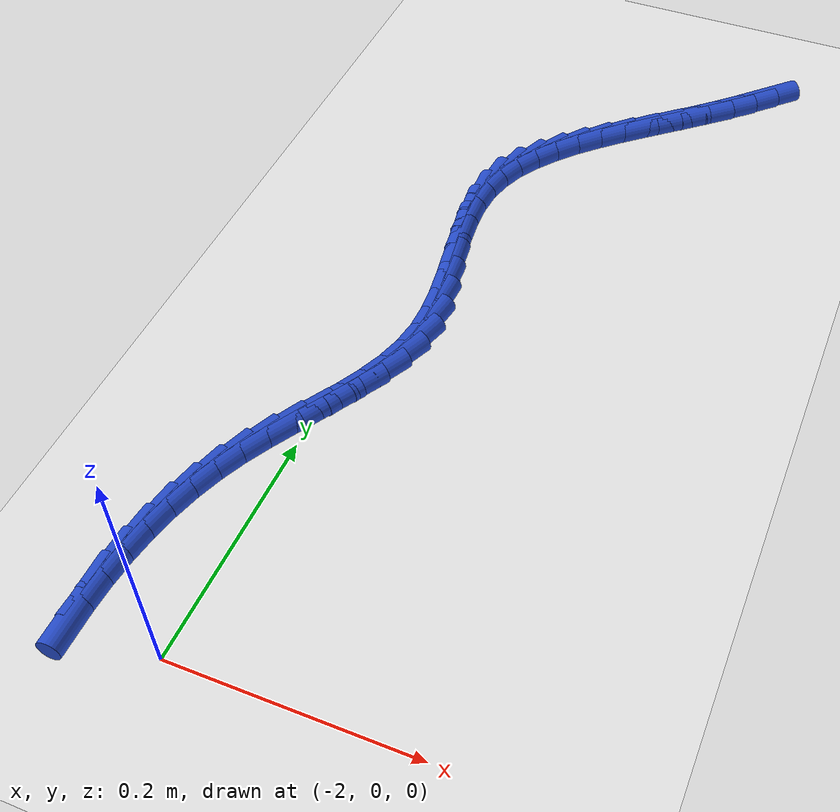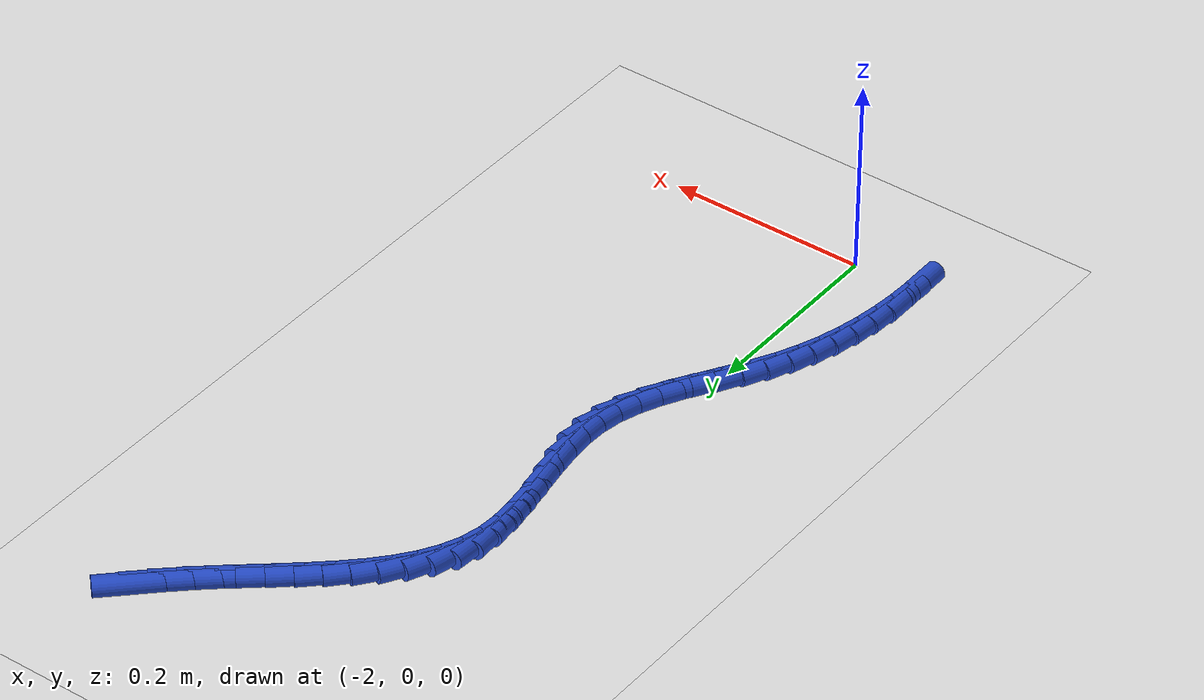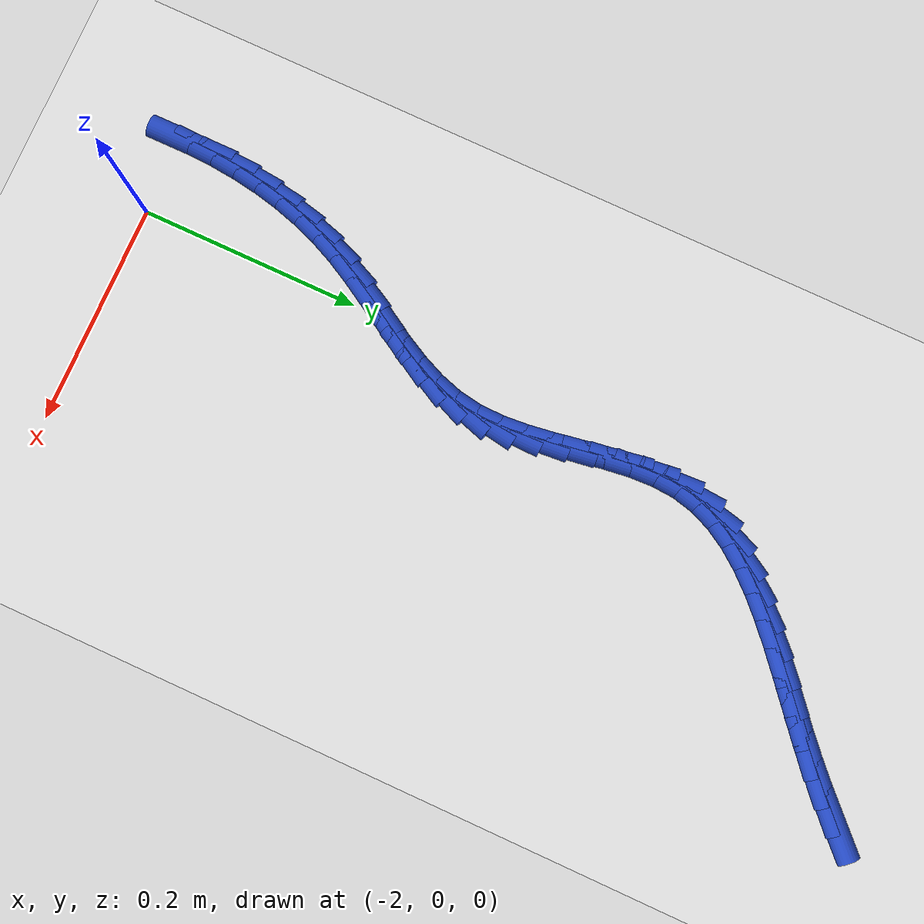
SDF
<sdf version="1.6">
 <world name="default">
  <model name="ground_plane">
   <static>1</static>
   <link name="link">
    <collision name="collision">
     <geometry><plane><normal>0 0 1</normal><size>100 100</size></plane></geometry>
     <surface><friction><ode><mu>100</mu><mu2>50</mu2></ode></friction></surface>
    </collision>
    <visual name="visual">
     <cast_shadows>0</cast_shadows>
     <geometry><plane><normal>0 0 1</normal><size>100 100</size></plane></geometry>
     <material>
      <script><uri>file://media/materials/scripts/gazebo.material</uri><name>Gazebo/WhiteGlow</name></script>
     </material>
    </visual>
   </link>
  </model>
  <model name="line">
   <link name="link_109">
    <pose>-1.771466565268514 0.7473538264761552 0.01 0 1.57 0.7790413126371049</pose>
    <collision name="collision">
     <geometry><cylinder><radius>0.01</radius><length>0.08</length></cylinder></geometry>
    </collision>
    <visual name="visual">
     <material>
      <script><name>Gazebo/Blue</name><uri>file://media/materials/scripts/gazebo.material</uri></script>
     </material>
     <geometry><cylinder><radius>0.01</radius><length>0.08</length></cylinder></geometry>
    </visual>
   </link>
   <link name="link_110">
    <pose>-1.788600950193411 0.7304359098659666 0.01 0 1.57 0.7538015448354323</pose>
    <collision name="collision">
     <geometry><cylinder><radius>0.01</radius><length>0.08</length></cylinder></geometry>
    </collision>
    <visual name="visual">
     <material>
      <script><name>Gazebo/Blue</name><uri>file://media/materials/scripts/gazebo.material</uri></script>
     </material>
     <geometry><cylinder><radius>0.01</radius><length>0.08</length></cylinder></geometry>
    </visual>
   </link>
   <link name="link_111">
    <pose>-1.8064144931316226 0.7137139357652277 0.01 0 1.57 0.7248236412766847</pose>
    <collision name="collision">
     <geometry><cylinder><radius>0.01</radius><length>0.08</length></cylinder></geometry>
    </collision>
    <visual name="visual">
     <material>
      <script><name>Gazebo/Blue</name><uri>file://media/materials/scripts/gazebo.material</uri></script>
     </material>
     <geometry><cylinder><radius>0.01</radius><length>0.08</length></cylinder></geometry>
    </visual>
   </link>
   <link name="link_112">
    <pose>-1.8249987922706286 0.6972549660007393 0.01 0 1.57 0.7043877822348676</pose>
    <collision name="collision">
     <geometry><cylinder><radius>0.01</radius><length>0.08</length></cylinder></geometry>
    </collision>
    <visual name="visual">
     <material>
      <script><name>Gazebo/Blue</name><uri>file://media/materials/scripts/gazebo.material</uri></script>
     </material>
     <geometry><cylinder><radius>0.01</radius><length>0.08</length></cylinder></geometry>
    </visual>
   </link>
   <link name="link_113">
    <pose>-1.8441264968978757 0.6809999184746548 0.01 0 1.57 0.6992294425343909</pose>
    <collision name="collision">
     <geometry><cylinder><radius>0.01</radius><length>0.08</length></cylinder></geometry>
    </collision>
    <visual name="visual">
     <material>
      <script><name>Gazebo/Blue</name><uri>file://media/materials/scripts/gazebo.material</uri></script>
     </material>
     <geometry><cylinder><radius>0.01</radius><length>0.08</length></cylinder></geometry>
    </visual>
   </link>
   <link name="link_114">
    <pose>-1.8633749828345685 0.6648124806568895 0.01 0 1.57 0.709225004221987</pose>
    <collision name="collision">
     <geometry><cylinder><radius>0.01</radius><length>0.08</length></cylinder></geometry>
    </collision>
    <visual name="visual">
     <material>
      <script><name>Gazebo/Blue</name><uri>file://media/materials/scripts/gazebo.material</uri></script>
     </material>
     <geometry><cylinder><radius>0.01</radius><length>0.08</length></cylinder></geometry>
    </visual>
   </link>
   <link name="link_115">
    <pose>-1.882318812153481 0.648555227183078 0.01 0 1.57 0.7349988497843716</pose>
    <collision name="collision">
     <geometry><cylinder><radius>0.01</radius><length>0.08</length></cylinder></geometry>
    </collision>
    <visual name="visual">
     <material>
      <script><name>Gazebo/Blue</name><uri>file://media/materials/scripts/gazebo.material</uri></script>
     </material>
     <geometry><cylinder><radius>0.01</radius><length>0.08</length></cylinder></geometry>
    </visual>
   </link>
   <link name="link_116">
    <pose>-1.9005325469273884 0.6320907326888545 0.01 0 1.57 0.7780448618520328</pose>
    <collision name="collision">
     <geometry><cylinder><radius>0.01</radius><length>0.08</length></cylinder></geometry>
    </collision>
    <visual name="visual">
     <material>
      <script><name>Gazebo/Blue</name><uri>file://media/materials/scripts/gazebo.material</uri></script>
     </material>
     <geometry><cylinder><radius>0.01</radius><length>0.08</length></cylinder></geometry>
    </visual>
   </link>
   <link name="link_117">
    <pose>-1.9175907492290645 0.6152815718098534 0.01 0 1.57 0.8407004173095257</pose>
    <collision name="collision">
     <geometry><cylinder><radius>0.01</radius><length>0.08</length></cylinder></geometry>
    </collision>
    <visual name="visual">
     <material>
      <script><name>Gazebo/Blue</name><uri>file://media/materials/scripts/gazebo.material</uri></script>
     </material>
     <geometry><cylinder><radius>0.01</radius><length>0.08</length></cylinder></geometry>
    </visual>
   </link>
   <link name="link_118">
    <pose>-1.9330679811312839 0.5979903191817085 0.01 0 1.57 0.9259478060596975</pose>
    <collision name="collision">
     <geometry><cylinder><radius>0.01</radius><length>0.08</length></cylinder></geometry>
    </collision>
    <visual name="visual">
     <material>
      <script><name>Gazebo/Blue</name><uri>file://media/materials/scripts/gazebo.material</uri></script>
     </material>
     <geometry><cylinder><radius>0.01</radius><length>0.08</length></cylinder></geometry>
    </visual>
   </link>
   <link name="link_119">
    <pose>-1.946538804706821 0.5800795494400545 0.01 0 1.57 1.036768316722575</pose>
    <collision name="collision">
     <geometry><cylinder><radius>0.01</radius><length>0.08</length></cylinder></geometry>
    </collision>
    <visual name="visual">
     <material>
      <script><name>Gazebo/Blue</name><uri>file://media/materials/scripts/gazebo.material</uri></script>
     </material>
     <geometry><cylinder><radius>0.01</radius><length>0.08</length></cylinder></geometry>
    </visual>
   </link>
   <link name="link_120">
    <pose>-1.9575777820284512 0.5614118372205255 0.01 0 1.57 1.1746632424410919</pose>
    <collision name="collision">
     <geometry><cylinder><radius>0.01</radius><length>0.08</length></cylinder></geometry>
    </collision>
    <visual name="visual">
     <material>
      <script><name>Gazebo/Blue</name><uri>file://media/materials/scripts/gazebo.material</uri></script>
     </material>
     <geometry><cylinder><radius>0.01</radius><length>0.08</length></cylinder></geometry>
    </visual>
   </link>
   <link name="link_121">
    <pose>-1.9657594751689478 0.5418497571587559 0.01 0 1.57 1.3371906927652175</pose>
    <collision name="collision">
     <geometry><cylinder><radius>0.01</radius><length>0.08</length></cylinder></geometry>
    </collision>
    <visual name="visual">
     <material>
      <script><name>Gazebo/Blue</name><uri>file://media/materials/scripts/gazebo.material</uri></script>
     </material>
     <geometry><cylinder><radius>0.01</radius><length>0.08</length></cylinder></geometry>
    </visual>
   </link>
   <link name="link_122">
    <pose>-1.9706596972994663 0.5212562534007614 0.01 0 1.57 1.5000370958665104</pose>
    <collision name="collision">
     <geometry><cylinder><radius>0.01</radius><length>0.08</length></cylinder></geometry>
    </collision>
    <visual name="visual">
     <material>
      <script><name>Gazebo/Blue</name><uri>file://media/materials/scripts/gazebo.material</uri></script>
     </material>
     <geometry><cylinder><radius>0.01</radius><length>0.08</length></cylinder></geometry>
    </visual>
   </link>
   <link name="link_123">
    <pose>-1.9721950007230418 0.49959490697972886 0.01 0 1.57 -1.5214820642111615</pose>
    <collision name="collision">
     <geometry><cylinder><radius>0.01</radius><length>0.08</length></cylinder></geometry>
    </collision>
    <visual name="visual">
     <material>
      <script><name>Gazebo/Blue</name><uri>file://media/materials/scripts/gazebo.material</uri></script>
     </material>
     <geometry><cylinder><radius>0.01</radius><length>0.08</length></cylinder></geometry>
    </visual>
   </link>
   <link name="link_124">
    <pose>-1.9710830988981793 0.47706592089933747 0.01 0 1.57 -1.445121849532125</pose>
    <collision name="collision">
     <geometry><cylinder><radius>0.01</radius><length>0.08</length></cylinder></geometry>
    </collision>
    <visual name="visual">
     <material>
      <script><name>Gazebo/Blue</name><uri>file://media/materials/scripts/gazebo.material</uri></script>
     </material>
     <geometry><cylinder><radius>0.01</radius><length>0.08</length></cylinder></geometry>
    </visual>
   </link>
   <link name="link_125">
    <pose>-1.9681567481552007 0.4539034759351955 0.01 0 1.57 -1.4064286538435493</pose>
    <collision name="collision">
     <geometry><cylinder><radius>0.01</radius><length>0.08</length></cylinder></geometry>
    </collision>
    <visual name="visual">
     <material>
      <script><name>Gazebo/Blue</name><uri>file://media/materials/scripts/gazebo.material</uri></script>
     </material>
     <geometry><cylinder><radius>0.01</radius><length>0.08</length></cylinder></geometry>
    </visual>
   </link>
   <link name="link_126">
    <pose>-1.964248704824428 0.43034175286291315 0.01 0 1.57 -1.4014469778879837</pose>
    <collision name="collision">
     <geometry><cylinder><radius>0.01</radius><length>0.08</length></cylinder></geometry>
    </collision>
    <visual name="visual">
     <material>
      <script><name>Gazebo/Blue</name><uri>file://media/materials/scripts/gazebo.material</uri></script>
     </material>
     <geometry><cylinder><radius>0.01</radius><length>0.08</length></cylinder></geometry>
    </visual>
   </link>
   <link name="link_127">
    <pose>-1.9601917252361822 0.4066149324580994 0.01 0 1.57 -1.4291692513413985</pose>
    <collision name="collision">
     <geometry><cylinder><radius>0.01</radius><length>0.08</length></cylinder></geometry>
    </collision>
    <visual name="visual">
     <material>
      <script><name>Gazebo/Blue</name><uri>file://media/materials/scripts/gazebo.material</uri></script>
     </material>
     <geometry><cylinder><radius>0.01</radius><length>0.08</length></cylinder></geometry>
    </visual>
   </link>
   <link name="link_128">
    <pose>-1.9568185657207873 0.382957195496364 0.01 0 1.57 -1.491467328468943</pose>
    <collision name="collision">
     <geometry><cylinder><radius>0.01</radius><length>0.08</length></cylinder></geometry>
    </collision>
    <visual name="visual">
     <material>
      <script><name>Gazebo/Blue</name><uri>file://media/materials/scripts/gazebo.material</uri></script>
     </material>
     <geometry><cylinder><radius>0.01</radius><length>0.08</length></cylinder></geometry>
    </visual>
   </link>
   <link name="link_129">
    <pose>-1.9549619826085638 0.35960272275331623 0.01 0 1.57 1.5492039859242983</pose>
    <collision name="collision">
     <geometry><cylinder><radius>0.01</radius><length>0.08</length></cylinder></geometry>
    </collision>
    <visual name="visual">
     <material>
      <script><name>Gazebo/Blue</name><uri>file://media/materials/scripts/gazebo.material</uri></script>
     </material>
     <geometry><cylinder><radius>0.01</radius><length>0.08</length></cylinder></geometry>
    </visual>
   </link>
   <link name="link_130">
    <pose>-1.9554547322298337 0.33678569500456557 0.01 0 1.57 1.4084623753906156</pose>
    <collision name="collision">
     <geometry><cylinder><radius>0.01</radius><length>0.08</length></cylinder></geometry>
    </collision>
    <visual name="visual">
     <material>
      <script><name>Gazebo/Blue</name><uri>file://media/materials/scripts/gazebo.material</uri></script>
     </material>
     <geometry><cylinder><radius>0.01</radius><length>0.08</length></cylinder></geometry>
    </visual>
   </link>
   <link name="link_131">
    <pose>-1.9590680543310888 0.3147229880232724 0.01 0 1.57 1.2673195715738828</pose>
    <collision name="collision">
     <geometry><cylinder><radius>0.01</radius><length>0.08</length></cylinder></geometry>
    </collision>
    <visual name="visual">
     <material>
      <script><name>Gazebo/Blue</name><uri>file://media/materials/scripts/gazebo.material</uri></script>
     </material>
     <geometry><cylinder><radius>0.01</radius><length>0.08</length></cylinder></geometry>
    </visual>
   </link>
   <link name="link_132">
    <pose>-1.9657457469651358 0.29339871302312864 0.01 0 1.57 1.1580958786090998</pose>
    <collision name="collision">
     <geometry><cylinder><radius>0.01</radius><length>0.08</length></cylinder></geometry>
    </collision>
    <visual name="visual">
     <material>
      <script><name>Gazebo/Blue</name><uri>file://media/materials/scripts/gazebo.material</uri></script>
     </material>
     <geometry><cylinder><radius>0.01</radius><length>0.08</length></cylinder></geometry>
    </visual>
   </link>
   <link name="link_133">
    <pose>-1.9748391019811637 0.27263030549128153 0.01 0 1.57 1.0820570206552478</pose>
    <collision name="collision">
     <geometry><cylinder><radius>0.01</radius><length>0.08</length></cylinder></geometry>
    </collision>
    <visual name="visual">
     <material>
      <script><name>Gazebo/Blue</name><uri>file://media/materials/scripts/gazebo.material</uri></script>
     </material>
     <geometry><cylinder><radius>0.01</radius><length>0.08</length></cylinder></geometry>
    </visual>
   </link>
   <link name="link_134">
    <pose>-1.9856865308493465 0.2522315775831436 0.01 0 1.57 1.0372880795987787</pose>
    <collision name="collision">
     <geometry><cylinder><radius>0.01</radius><length>0.08</length></cylinder></geometry>
    </collision>
    <visual name="visual">
     <material>
      <script><name>Gazebo/Blue</name><uri>file://media/materials/scripts/gazebo.material</uri></script>
     </material>
     <geometry><cylinder><radius>0.01</radius><length>0.08</length></cylinder></geometry>
    </visual>
   </link>
   <link name="link_135">
    <pose>-1.9976264450398604 0.23201634145412786 0.01 0 1.57 1.021692239177428</pose>
    <collision name="collision">
     <geometry><cylinder><radius>0.01</radius><length>0.08</length></cylinder></geometry>
    </collision>
    <visual name="visual">
     <material>
      <script><name>Gazebo/Blue</name><uri>file://media/materials/scripts/gazebo.material</uri></script>
     </material>
     <geometry><cylinder><radius>0.01</radius><length>0.08</length></cylinder></geometry>
    </visual>
   </link>
   <link name="link_136">
    <pose>-2.009997256022879 0.2117984092596475 0.01 0 1.57 1.0341314886987998</pose>
    <collision name="collision">
     <geometry><cylinder><radius>0.01</radius><length>0.08</length></cylinder></geometry>
    </collision>
    <visual name="visual">
     <material>
      <script><name>Gazebo/Blue</name><uri>file://media/materials/scripts/gazebo.material</uri></script>
     </material>
     <geometry><cylinder><radius>0.01</radius><length>0.08</length></cylinder></geometry>
    </visual>
   </link>
   <link name="link_137">
    <pose>-2.022137375268579 0.19139159315511559 0.01 0 1.57 1.0747090942664412</pose>
    <collision name="collision">
     <geometry><cylinder><radius>0.01</radius><length>0.08</length></cylinder></geometry>
    </collision>
    <visual name="visual">
     <material>
      <script><name>Gazebo/Blue</name><uri>file://media/materials/scripts/gazebo.material</uri></script>
     </material>
     <geometry><cylinder><radius>0.01</radius><length>0.08</length></cylinder></geometry>
    </visual>
   </link>
   <link name="link_138">
    <pose>-2.0333852142471343 0.170609705295945 0.01 0 1.57 1.1417381217211717</pose>
    <collision name="collision">
     <geometry><cylinder><radius>0.01</radius><length>0.08</length></cylinder></geometry>
    </collision>
    <visual name="visual">
     <material>
      <script><name>Gazebo/Blue</name><uri>file://media/materials/scripts/gazebo.material</uri></script>
     </material>
     <geometry><cylinder><radius>0.01</radius><length>0.08</length></cylinder></geometry>
    </visual>
   </link>
   <link name="link_139">
    <pose>-2.0431397012364876 0.1492875660913785 0.01 0 1.57 1.2151551380727048</pose>
    <collision name="collision">
     <geometry><cylinder><radius>0.01</radius><length>0.08</length></cylinder></geometry>
    </collision>
    <visual name="visual">
     <material>
      <script><name>Gazebo/Blue</name><uri>file://media/materials/scripts/gazebo.material</uri></script>
     </material>
     <geometry><cylinder><radius>0.01</radius><length>0.08</length></cylinder></geometry>
    </visual>
   </link>
   <link name="link_140">
    <pose>-2.0512619125548297 0.12742042945161142 0.01 0 1.57 1.2850464116411364</pose>
    <collision name="collision">
     <geometry><cylinder><radius>0.01</radius><length>0.08</length></cylinder></geometry>
    </collision>
    <visual name="visual">
     <material>
      <script><name>Gazebo/Blue</name><uri>file://media/materials/scripts/gazebo.material</uri></script>
     </material>
     <geometry><cylinder><radius>0.01</radius><length>0.08</length></cylinder></geometry>
    </visual>
   </link>
   <link name="link_141">
    <pose>-2.057826034497036 0.10507752986593565 0.01 0 1.57 1.3510377499080213</pose>
    <collision name="collision">
     <geometry><cylinder><radius>0.01</radius><length>0.08</length></cylinder></geometry>
    </collision>
    <visual name="visual">
     <material>
      <script><name>Gazebo/Blue</name><uri>file://media/materials/scripts/gazebo.material</uri></script>
     </material>
     <geometry><cylinder><radius>0.01</radius><length>0.08</length></cylinder></geometry>
    </visual>
   </link>
   <link name="link_142">
    <pose>-2.0629073934616318 0.08232849760768965 0.01 0 1.57 1.4129758913174826</pose>
    <collision name="collision">
     <geometry><cylinder><radius>0.01</radius><length>0.08</length></cylinder></geometry>
    </collision>
    <visual name="visual">
     <material>
      <script><name>Gazebo/Blue</name><uri>file://media/materials/scripts/gazebo.material</uri></script>
     </material>
     <geometry><cylinder><radius>0.01</radius><length>0.08</length></cylinder></geometry>
    </visual>
   </link>
   <link name="link_143">
    <pose>-2.066581315847148 0.059242962950211836 0.01 0 1.57 1.4708490614557397</pose>
    <collision name="collision">
     <geometry><cylinder><radius>0.01</radius><length>0.08</length></cylinder></geometry>
    </collision>
    <visual name="visual">
     <material>
      <script><name>Gazebo/Blue</name><uri>file://media/materials/scripts/gazebo.material</uri></script>
     </material>
     <geometry><cylinder><radius>0.01</radius><length>0.08</length></cylinder></geometry>
    </visual>
   </link>
   <link name="link_144">
    <pose>-2.0689231280521136 0.03589055616684031 0.01 0 1.57 1.524754806497009</pose>
    <collision name="collision">
     <geometry><cylinder><radius>0.01</radius><length>0.08</length></cylinder></geometry>
    </collision>
    <visual name="visual">
     <material>
      <script><name>Gazebo/Blue</name><uri>file://media/materials/scripts/gazebo.material</uri></script>
     </material>
     <geometry><cylinder><radius>0.01</radius><length>0.08</length></cylinder></geometry>
    </visual>
   </link>
   <link name="link_145">
    <pose>-2.070008156475057 0.012340907530913381 0.01 0 1.57 -1.5667237091632993</pose>
    <collision name="collision">
     <geometry><cylinder><radius>0.01</radius><length>0.08</length></cylinder></geometry>
    </collision>
    <visual name="visual">
     <material>
      <script><name>Gazebo/Blue</name><uri>file://media/materials/scripts/gazebo.material</uri></script>
     </material>
     <geometry><cylinder><radius>0.01</radius><length>0.08</length></cylinder></geometry>
    </visual>
   </link>
  </model>
 </world>
</sdf>
